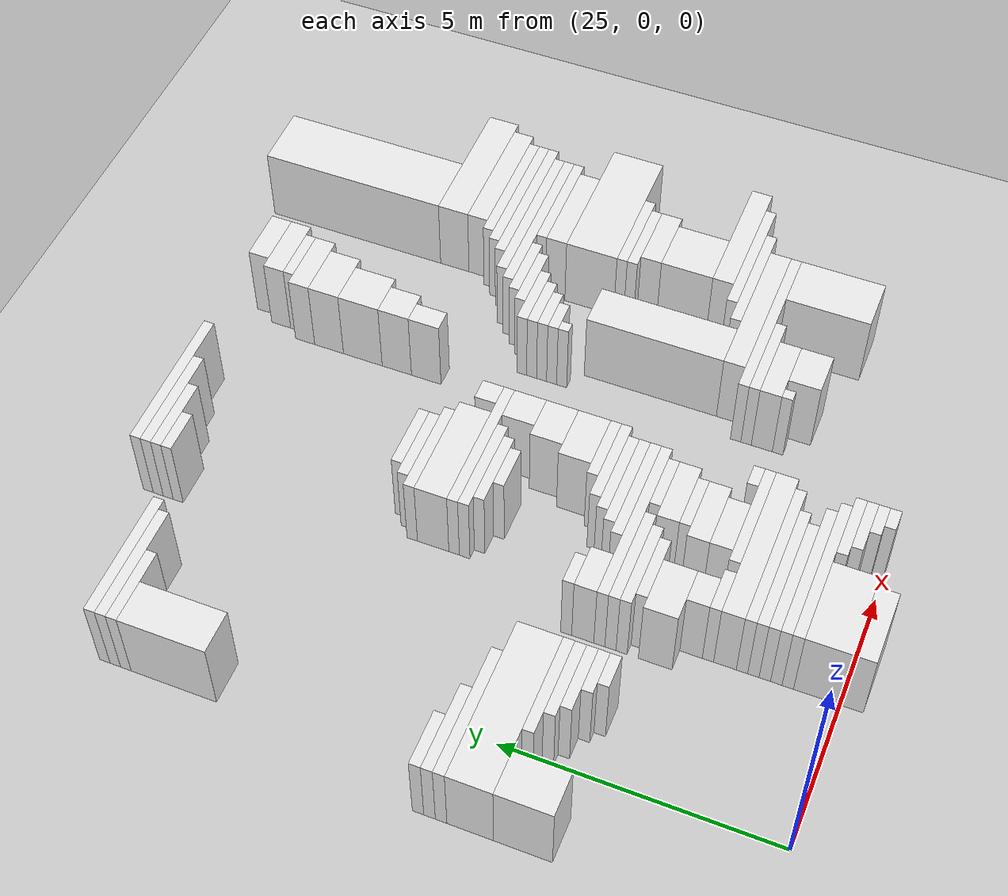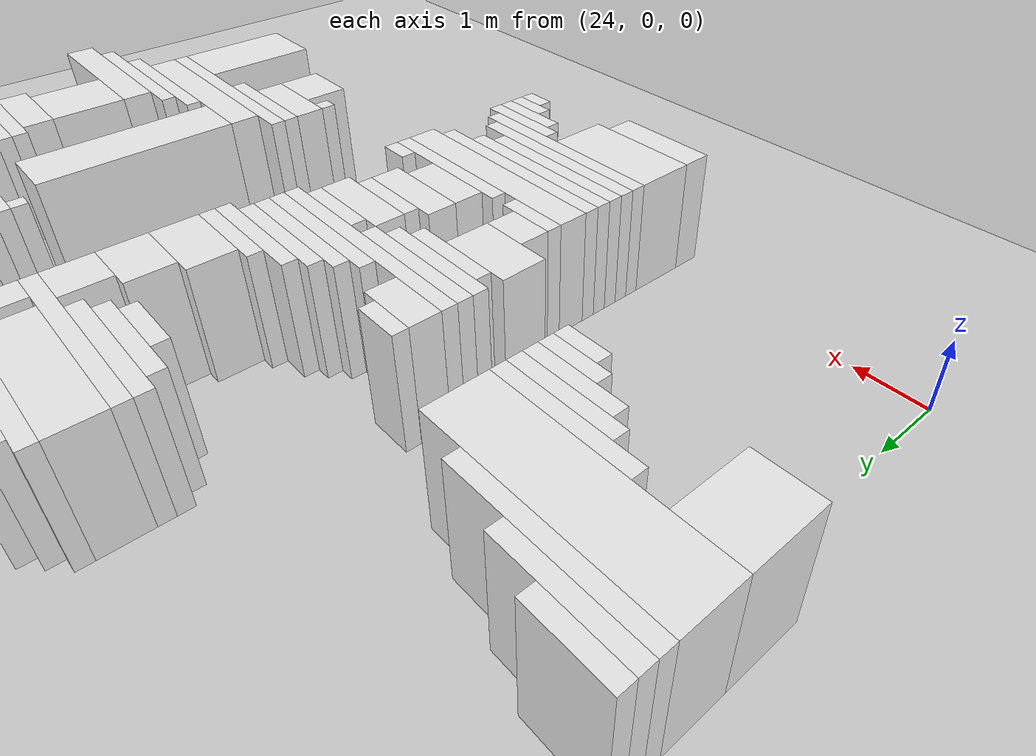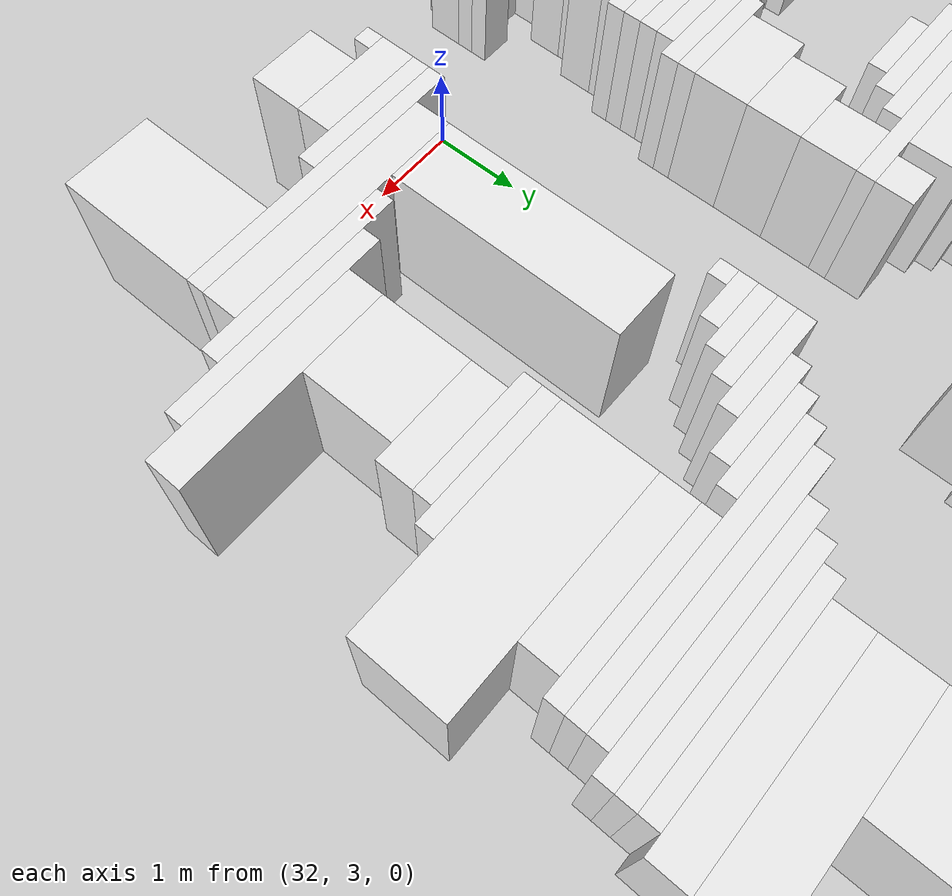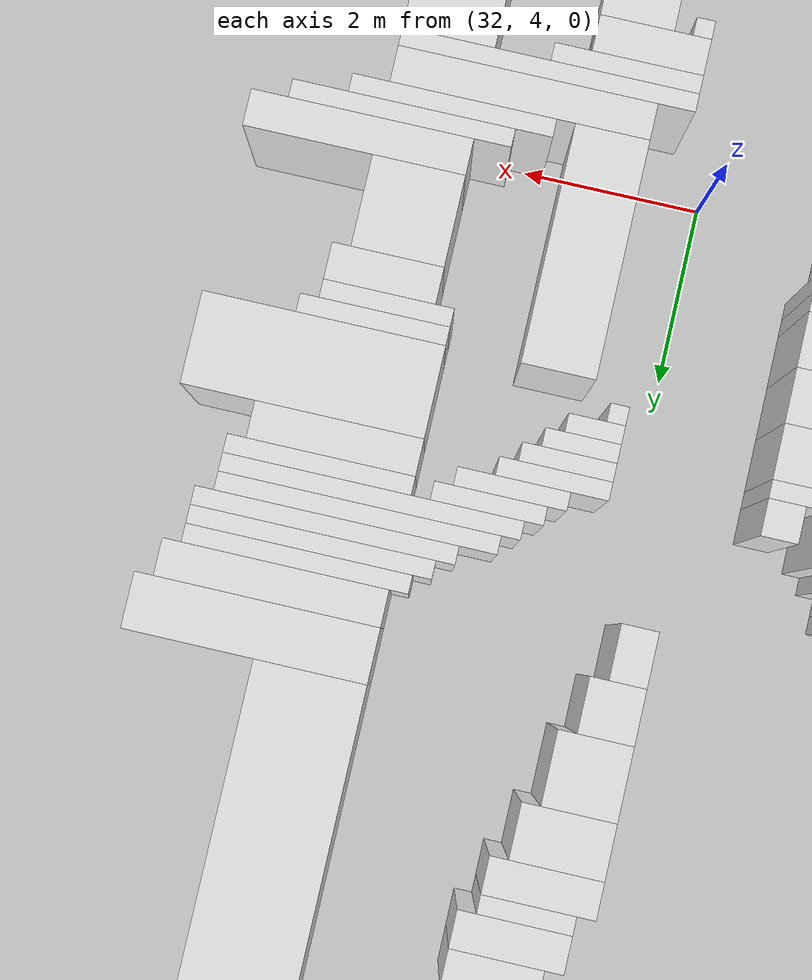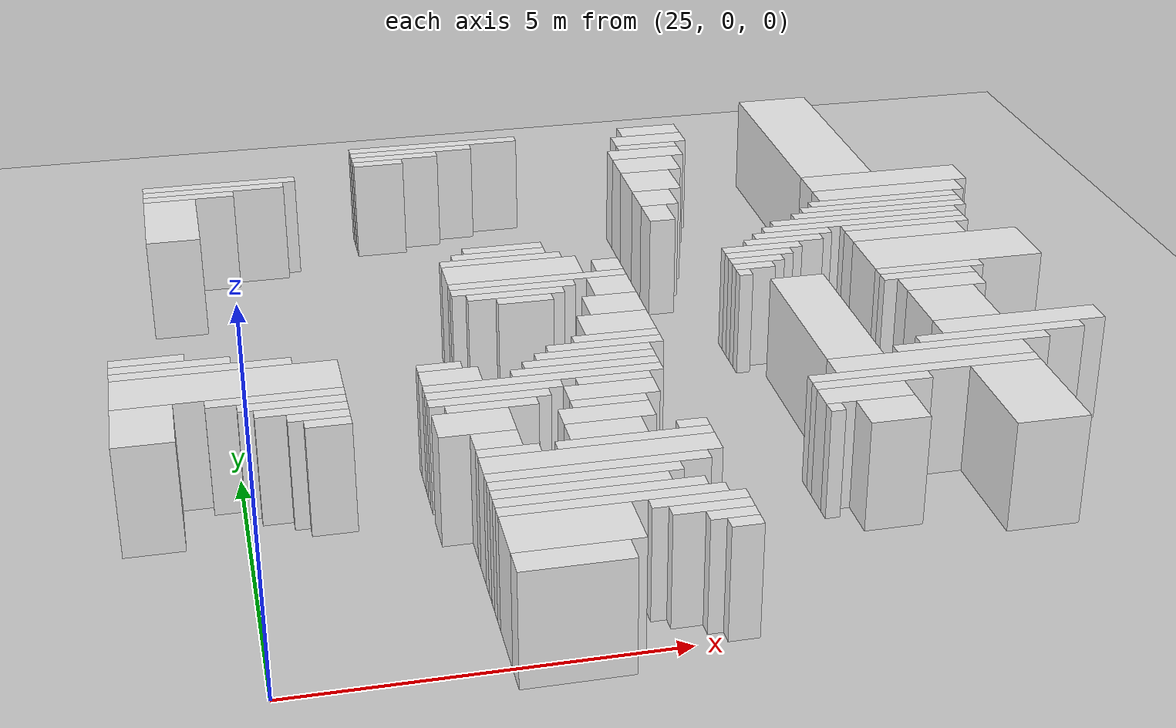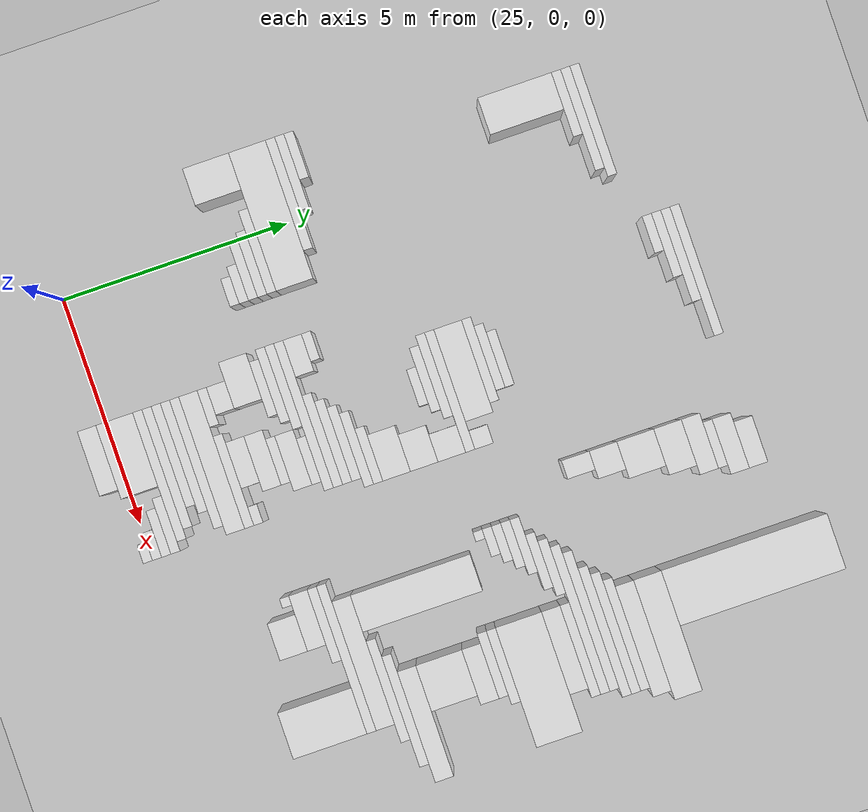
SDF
<sdf version="1.7">
 <world name="default">
  <model name="ground_plane">
   <static>1</static>
   <link name="link">
    <collision name="collision">
     <geometry><plane><normal>0 0 1</normal><size>120 120</size></plane></geometry>
    </collision>
    <visual name="visual">
     <geometry><plane><normal>0 0 1</normal><size>120 120</size></plane></geometry>
     <material>
      <script><uri>file://media/materials/scripts/gazebo.material</uri><name>Gazebo/Grey</name></script>
     </material>
    </visual>
   </link>
  </model>
  <model name="random_complex_01_model">
   <static>1</static>
   <link name="obs_1277">
    <pose>28.8000 12.7000 0.8000 0 0 0</pose>
    <collision name="obs_1277_col"><geometry><box><size>2.8000 0.2000 1.6000</size></box></geometry></collision>
    <visual name="obs_1277_vis">
     <geometry><box><size>2.8000 0.2000 1.6000</size></box></geometry>
     <material>
      <script><uri>file://media/materials/scripts/gazebo.material</uri><name>Gazebo/White</name></script>
     </material>
    </visual>
   </link>
   <link name="obs_1283">
    <pose>32.5000 12.6000 0.8000 0 0 0</pose>
    <collision name="obs_1283_col"><geometry><box><size>1.0000 0.4000 1.6000</size></box></geometry></collision>
    <visual name="obs_1283_vis">
     <geometry><box><size>1.0000 0.4000 1.6000</size></box></geometry>
     <material>
      <script><uri>file://media/materials/scripts/gazebo.material</uri><name>Gazebo/White</name></script>
     </material>
    </visual>
   </link>
   <link name="obs_1288">
    <pose>28.4000 12.5000 0.8000 0 0 0</pose>
    <collision name="obs_1288_col"><geometry><box><size>2.0000 0.2000 1.6000</size></box></geometry></collision>
    <visual name="obs_1288_vis">
     <geometry><box><size>2.0000 0.2000 1.6000</size></box></geometry>
     <material>
      <script><uri>file://media/materials/scripts/gazebo.material</uri><name>Gazebo/White</name></script>
     </material>
    </visual>
   </link>
   <link name="obs_1296">
    <pose>28.1000 12.3000 0.8000 0 0 0</pose>
    <collision name="obs_1296_col"><geometry><box><size>1.4000 0.2000 1.6000</size></box></geometry></collision>
    <visual name="obs_1296_vis">
     <geometry><box><size>1.4000 0.2000 1.6000</size></box></geometry>
     <material>
      <script><uri>file://media/materials/scripts/gazebo.material</uri><name>Gazebo/White</name></script>
     </material>
    </visual>
   </link>
   <link name="obs_1300">
    <pose>32.4000 12.2000 0.8000 0 0 0</pose>
    <collision name="obs_1300_col"><geometry><box><size>1.2000 0.4000 1.6000</size></box></geometry></collision>
    <visual name="obs_1300_vis">
     <geometry><box><size>1.2000 0.4000 1.6000</size></box></geometry>
     <material>
      <script><uri>file://media/materials/scripts/gazebo.material</uri><name>Gazebo/White</name></script>
     </material>
    </visual>
   </link>
   <link name="obs_1305">
    <pose>27.8000 12.1000 0.8000 0 0 0</pose>
    <collision name="obs_1305_col"><geometry><box><size>0.8000 0.2000 1.6000</size></box></geometry></collision>
    <visual name="obs_1305_vis">
     <geometry><box><size>0.8000 0.2000 1.6000</size></box></geometry>
     <material>
      <script><uri>file://media/materials/scripts/gazebo.material</uri><name>Gazebo/White</name></script>
     </material>
    </visual>
   </link>
   <link name="obs_1314">
    <pose>32.3000 11.9000 0.8000 0 0 0</pose>
    <collision name="obs_1314_col"><geometry><box><size>1.0000 0.2000 1.6000</size></box></geometry></collision>
    <visual name="obs_1314_vis">
     <geometry><box><size>1.0000 0.2000 1.6000</size></box></geometry>
     <material>
      <script><uri>file://media/materials/scripts/gazebo.material</uri><name>Gazebo/White</name></script>
     </material>
    </visual>
   </link>
   <link name="obs_1321">
    <pose>25.2000 11.7000 0.8000 0 0 0</pose>
    <collision name="obs_1321_col"><geometry><box><size>2.4000 0.2000 1.6000</size></box></geometry></collision>
    <visual name="obs_1321_vis">
     <geometry><box><size>2.4000 0.2000 1.6000</size></box></geometry>
     <material>
      <script><uri>file://media/materials/scripts/gazebo.material</uri><name>Gazebo/White</name></script>
     </material>
    </visual>
   </link>
   <link name="obs_1323">
    <pose>32.2000 11.6000 0.8000 0 0 0</pose>
    <collision name="obs_1323_col"><geometry><box><size>1.2000 0.4000 1.6000</size></box></geometry></collision>
    <visual name="obs_1323_vis">
     <geometry><box><size>1.2000 0.4000 1.6000</size></box></geometry>
     <material>
      <script><uri>file://media/materials/scripts/gazebo.material</uri><name>Gazebo/White</name></script>
     </material>
    </visual>
   </link>
   <link name="obs_1326">
    <pose>25.1000 11.5000 0.8000 0 0 0</pose>
    <collision name="obs_1326_col"><geometry><box><size>2.2000 0.2000 1.6000</size></box></geometry></collision>
    <visual name="obs_1326_vis">
     <geometry><box><size>2.2000 0.2000 1.6000</size></box></geometry>
     <material>
      <script><uri>file://media/materials/scripts/gazebo.material</uri><name>Gazebo/White</name></script>
     </material>
    </visual>
   </link>
   <link name="obs_1330">
    <pose>24.7000 11.3000 0.8000 0 0 0</pose>
    <collision name="obs_1330_col"><geometry><box><size>1.4000 0.2000 1.6000</size></box></geometry></collision>
    <visual name="obs_1330_vis">
     <geometry><box><size>1.4000 0.2000 1.6000</size></box></geometry>
     <material>
      <script><uri>file://media/materials/scripts/gazebo.material</uri><name>Gazebo/White</name></script>
     </material>
    </visual>
   </link>
   <link name="obs_1339">
    <pose>32.1000 11.1000 0.8000 0 0 0</pose>
    <collision name="obs_1339_col"><geometry><box><size>1.0000 0.6000 1.6000</size></box></geometry></collision>
    <visual name="obs_1339_vis">
     <geometry><box><size>1.0000 0.6000 1.6000</size></box></geometry>
     <material>
      <script><uri>file://media/materials/scripts/gazebo.material</uri><name>Gazebo/White</name></script>
     </material>
    </visual>
   </link>
   <link name="obs_1362">
    <pose>35.0000 11.8000 0.8000 0 0 0</pose>
    <collision name="obs_1362_col"><geometry><box><size>1.2000 3.6000 1.6000</size></box></geometry></collision>
    <visual name="obs_1362_vis">
     <geometry><box><size>1.2000 3.6000 1.6000</size></box></geometry>
     <material>
      <script><uri>file://media/materials/scripts/gazebo.material</uri><name>Gazebo/White</name></script>
     </material>
    </visual>
   </link>
   <link name="obs_1363">
    <pose>32.0000 10.4000 0.8000 0 0 0</pose>
    <collision name="obs_1363_col"><geometry><box><size>0.8000 0.8000 1.6000</size></box></geometry></collision>
    <visual name="obs_1363_vis">
     <geometry><box><size>0.8000 0.8000 1.6000</size></box></geometry>
     <material>
      <script><uri>file://media/materials/scripts/gazebo.material</uri><name>Gazebo/White</name></script>
     </material>
    </visual>
   </link>
   <link name="obs_1379">
    <pose>24.4000 10.4000 0.8000 0 0 0</pose>
    <collision name="obs_1379_col"><geometry><box><size>0.8000 1.6000 1.6000</size></box></geometry></collision>
    <visual name="obs_1379_vis">
     <geometry><box><size>0.8000 1.6000 1.6000</size></box></geometry>
     <material>
      <script><uri>file://media/materials/scripts/gazebo.material</uri><name>Gazebo/White</name></script>
     </material>
    </visual>
   </link>
   <link name="obs_1385">
    <pose>31.9000 9.7000 0.8000 0 0 0</pose>
    <collision name="obs_1385_col"><geometry><box><size>0.6000 0.6000 1.6000</size></box></geometry></collision>
    <visual name="obs_1385_vis">
     <geometry><box><size>0.6000 0.6000 1.6000</size></box></geometry>
     <material>
      <script><uri>file://media/materials/scripts/gazebo.material</uri><name>Gazebo/White</name></script>
     </material>
    </visual>
   </link>
   <link name="obs_1386">
    <pose>35.7000 9.7000 0.8000 0 0 0</pose>
    <collision name="obs_1386_col"><geometry><box><size>2.6000 0.6000 1.6000</size></box></geometry></collision>
    <visual name="obs_1386_vis">
     <geometry><box><size>2.6000 0.6000 1.6000</size></box></geometry>
     <material>
      <script><uri>file://media/materials/scripts/gazebo.material</uri><name>Gazebo/White</name></script>
     </material>
    </visual>
   </link>
   <link name="obs_1402">
    <pose>35.6000 9.2000 0.8000 0 0 0</pose>
    <collision name="obs_1402_col"><geometry><box><size>2.4000 0.4000 1.6000</size></box></geometry></collision>
    <visual name="obs_1402_vis">
     <geometry><box><size>2.4000 0.4000 1.6000</size></box></geometry>
     <material>
      <script><uri>file://media/materials/scripts/gazebo.material</uri><name>Gazebo/White</name></script>
     </material>
    </visual>
   </link>
   <link name="obs_1411">
    <pose>31.8000 9.1000 0.8000 0 0 0</pose>
    <collision name="obs_1411_col"><geometry><box><size>0.4000 0.6000 1.6000</size></box></geometry></collision>
    <visual name="obs_1411_vis">
     <geometry><box><size>0.4000 0.6000 1.6000</size></box></geometry>
     <material>
      <script><uri>file://media/materials/scripts/gazebo.material</uri><name>Gazebo/White</name></script>
     </material>
    </visual>
   </link>
   <link name="obs_1419">
    <pose>35.4000 8.9000 0.8000 0 0 0</pose>
    <collision name="obs_1419_col"><geometry><box><size>2.4000 0.2000 1.6000</size></box></geometry></collision>
    <visual name="obs_1419_vis">
     <geometry><box><size>2.4000 0.2000 1.6000</size></box></geometry>
     <material>
      <script><uri>file://media/materials/scripts/gazebo.material</uri><name>Gazebo/White</name></script>
     </material>
    </visual>
   </link>
   <link name="obs_1425">
    <pose>35.3000 8.7000 0.8000 0 0 0</pose>
    <collision name="obs_1425_col"><geometry><box><size>2.6000 0.2000 1.6000</size></box></geometry></collision>
    <visual name="obs_1425_vis">
     <geometry><box><size>2.6000 0.2000 1.6000</size></box></geometry>
     <material>
      <script><uri>file://media/materials/scripts/gazebo.material</uri><name>Gazebo/White</name></script>
     </material>
    </visual>
   </link>
   <link name="obs_1433">
    <pose>35.2000 8.5000 0.8000 0 0 0</pose>
    <collision name="obs_1433_col"><geometry><box><size>2.8000 0.2000 1.6000</size></box></geometry></collision>
    <visual name="obs_1433_vis">
     <geometry><box><size>2.8000 0.2000 1.6000</size></box></geometry>
     <material>
      <script><uri>file://media/materials/scripts/gazebo.material</uri><name>Gazebo/White</name></script>
     </material>
    </visual>
   </link>
   <link name="obs_1440">
    <pose>29.2000 8.3000 0.8000 0 0 0</pose>
    <collision name="obs_1440_col"><geometry><box><size>1.2000 0.2000 1.6000</size></box></geometry></collision>
    <visual name="obs_1440_vis">
     <geometry><box><size>1.2000 0.2000 1.6000</size></box></geometry>
     <material>
      <script><uri>file://media/materials/scripts/gazebo.material</uri><name>Gazebo/White</name></script>
     </material>
    </visual>
   </link>
   <link name="obs_1441">
    <pose>34.9000 8.3000 0.8000 0 0 0</pose>
    <collision name="obs_1441_col"><geometry><box><size>3.0000 0.2000 1.6000</size></box></geometry></collision>
    <visual name="obs_1441_vis">
     <geometry><box><size>3.0000 0.2000 1.6000</size></box></geometry>
     <material>
      <script><uri>file://media/materials/scripts/gazebo.material</uri><name>Gazebo/White</name></script>
     </material>
    </visual>
   </link>
   <link name="obs_1449">
    <pose>29.1000 8.1000 0.8000 0 0 0</pose>
    <collision name="obs_1449_col"><geometry><box><size>1.4000 0.2000 1.6000</size></box></geometry></collision>
    <visual name="obs_1449_vis">
     <geometry><box><size>1.4000 0.2000 1.6000</size></box></geometry>
     <material>
      <script><uri>file://media/materials/scripts/gazebo.material</uri><name>Gazebo/White</name></script>
     </material>
    </visual>
   </link>
   <link name="obs_1450">
    <pose>34.8000 8.1000 0.8000 0 0 0</pose>
    <collision name="obs_1450_col"><geometry><box><size>3.2000 0.2000 1.6000</size></box></geometry></collision>
    <visual name="obs_1450_vis">
     <geometry><box><size>3.2000 0.2000 1.6000</size></box></geometry>
     <material>
      <script><uri>file://media/materials/scripts/gazebo.material</uri><name>Gazebo/White</name></script>
     </material>
    </visual>
   </link>
   <link name="obs_1454">
    <pose>29.1000 7.9000 0.8000 0 0 0</pose>
    <collision name="obs_1454_col"><geometry><box><size>1.8000 0.2000 1.6000</size></box></geometry></collision>
    <visual name="obs_1454_vis">
     <geometry><box><size>1.8000 0.2000 1.6000</size></box></geometry>
     <material>
      <script><uri>file://media/materials/scripts/gazebo.material</uri><name>Gazebo/White</name></script>
     </material>
    </visual>
   </link>
   <link name="obs_1455">
    <pose>33.6000 7.9000 0.8000 0 0 0</pose>
    <collision name="obs_1455_col"><geometry><box><size>1.2000 0.2000 1.6000</size></box></geometry></collision>
    <visual name="obs_1455_vis">
     <geometry><box><size>1.2000 0.2000 1.6000</size></box></geometry>
     <material>
      <script><uri>file://media/materials/scripts/gazebo.material</uri><name>Gazebo/White</name></script>
     </material>
    </visual>
   </link>
   <link name="obs_1456">
    <pose>35.4000 7.9000 0.8000 0 0 0</pose>
    <collision name="obs_1456_col"><geometry><box><size>2.0000 0.2000 1.6000</size></box></geometry></collision>
    <visual name="obs_1456_vis">
     <geometry><box><size>2.0000 0.2000 1.6000</size></box></geometry>
     <material>
      <script><uri>file://media/materials/scripts/gazebo.material</uri><name>Gazebo/White</name></script>
     </material>
    </visual>
   </link>
   <link name="obs_1464">
    <pose>33.4000 7.7000 0.8000 0 0 0</pose>
    <collision name="obs_1464_col"><geometry><box><size>1.2000 0.2000 1.6000</size></box></geometry></collision>
    <visual name="obs_1464_vis">
     <geometry><box><size>1.2000 0.2000 1.6000</size></box></geometry>
     <material>
      <script><uri>file://media/materials/scripts/gazebo.material</uri><name>Gazebo/White</name></script>
     </material>
    </visual>
   </link>
   <link name="obs_1468">
    <pose>35.3000 7.6000 0.8000 0 0 0</pose>
    <collision name="obs_1468_col"><geometry><box><size>1.8000 0.4000 1.6000</size></box></geometry></collision>
    <visual name="obs_1468_vis">
     <geometry><box><size>1.8000 0.4000 1.6000</size></box></geometry>
     <material>
      <script><uri>file://media/materials/scripts/gazebo.material</uri><name>Gazebo/White</name></script>
     </material>
    </visual>
   </link>
   <link name="obs_1473">
    <pose>33.0000 7.5000 0.8000 0 0 0</pose>
    <collision name="obs_1473_col"><geometry><box><size>1.2000 0.2000 1.6000</size></box></geometry></collision>
    <visual name="obs_1473_vis">
     <geometry><box><size>1.2000 0.2000 1.6000</size></box></geometry>
     <material>
      <script><uri>file://media/materials/scripts/gazebo.material</uri><name>Gazebo/White</name></script>
     </material>
    </visual>
   </link>
   <link name="obs_1476">
    <pose>29.2000 7.5000 0.8000 0 0 0</pose>
    <collision name="obs_1476_col"><geometry><box><size>2.0000 0.6000 1.6000</size></box></geometry></collision>
    <visual name="obs_1476_vis">
     <geometry><box><size>2.0000 0.6000 1.6000</size></box></geometry>
     <material>
      <script><uri>file://media/materials/scripts/gazebo.material</uri><name>Gazebo/White</name></script>
     </material>
    </visual>
   </link>
   <link name="obs_1478">
    <pose>30.6000 7.4000 0.8000 0 0 0</pose>
    <collision name="obs_1478_col"><geometry><box><size>0.4000 0.4000 1.6000</size></box></geometry></collision>
    <visual name="obs_1478_vis">
     <geometry><box><size>0.4000 0.4000 1.6000</size></box></geometry>
     <material>
      <script><uri>file://media/materials/scripts/gazebo.material</uri><name>Gazebo/White</name></script>
     </material>
    </visual>
   </link>
   <link name="obs_1483">
    <pose>32.9000 7.3000 0.8000 0 0 0</pose>
    <collision name="obs_1483_col"><geometry><box><size>1.0000 0.2000 1.6000</size></box></geometry></collision>
    <visual name="obs_1483_vis">
     <geometry><box><size>1.0000 0.2000 1.6000</size></box></geometry>
     <material>
      <script><uri>file://media/materials/scripts/gazebo.material</uri><name>Gazebo/White</name></script>
     </material>
    </visual>
   </link>
   <link name="obs_1489">
    <pose>29.5000 7.1000 0.8000 0 0 0</pose>
    <collision name="obs_1489_col"><geometry><box><size>2.6000 0.2000 1.6000</size></box></geometry></collision>
    <visual name="obs_1489_vis">
     <geometry><box><size>2.6000 0.2000 1.6000</size></box></geometry>
     <material>
      <script><uri>file://media/materials/scripts/gazebo.material</uri><name>Gazebo/White</name></script>
     </material>
    </visual>
   </link>
   <link name="obs_1490">
    <pose>32.8000 7.1000 0.8000 0 0 0</pose>
    <collision name="obs_1490_col"><geometry><box><size>0.8000 0.2000 1.6000</size></box></geometry></collision>
    <visual name="obs_1490_vis">
     <geometry><box><size>0.8000 0.2000 1.6000</size></box></geometry>
     <material>
      <script><uri>file://media/materials/scripts/gazebo.material</uri><name>Gazebo/White</name></script>
     </material>
    </visual>
   </link>
   <link name="obs_1497">
    <pose>29.1000 6.9000 0.8000 0 0 0</pose>
    <collision name="obs_1497_col"><geometry><box><size>1.8000 0.2000 1.6000</size></box></geometry></collision>
    <visual name="obs_1497_vis">
     <geometry><box><size>1.8000 0.2000 1.6000</size></box></geometry>
     <material>
      <script><uri>file://media/materials/scripts/gazebo.material</uri><name>Gazebo/White</name></script>
     </material>
    </visual>
   </link>
   <link name="obs_1498">
    <pose>32.7000 6.9000 0.8000 0 0 0</pose>
    <collision name="obs_1498_col"><geometry><box><size>0.6000 0.2000 1.6000</size></box></geometry></collision>
    <visual name="obs_1498_vis">
     <geometry><box><size>0.6000 0.2000 1.6000</size></box></geometry>
     <material>
      <script><uri>file://media/materials/scripts/gazebo.material</uri><name>Gazebo/White</name></script>
     </material>
    </visual>
   </link>
   <link name="obs_1505">
    <pose>29.1000 6.7000 0.8000 0 0 0</pose>
    <collision name="obs_1505_col"><geometry><box><size>1.4000 0.2000 1.6000</size></box></geometry></collision>
    <visual name="obs_1505_vis">
     <geometry><box><size>1.4000 0.2000 1.6000</size></box></geometry>
     <material>
      <script><uri>file://media/materials/scripts/gazebo.material</uri><name>Gazebo/White</name></script>
     </material>
    </visual>
   </link>
   <link name="obs_1506">
    <pose>32.5000 6.7000 0.8000 0 0 0</pose>
    <collision name="obs_1506_col"><geometry><box><size>0.2000 0.2000 1.6000</size></box></geometry></collision>
    <visual name="obs_1506_vis">
     <geometry><box><size>0.2000 0.2000 1.6000</size></box></geometry>
     <material>
      <script><uri>file://media/materials/scripts/gazebo.material</uri><name>Gazebo/White</name></script>
     </material>
    </visual>
   </link>
   <link name="obs_1508">
    <pose>35.7000 6.9000 0.8000 0 0 0</pose>
    <collision name="obs_1508_col"><geometry><box><size>2.6000 1.0000 1.6000</size></box></geometry></collision>
    <visual name="obs_1508_vis">
     <geometry><box><size>2.6000 1.0000 1.6000</size></box></geometry>
     <material>
      <script><uri>file://media/materials/scripts/gazebo.material</uri><name>Gazebo/White</name></script>
     </material>
    </visual>
   </link>
   <link name="obs_1511">
    <pose>30.5000 6.7000 0.8000 0 0 0</pose>
    <collision name="obs_1511_col"><geometry><box><size>0.6000 0.6000 1.6000</size></box></geometry></collision>
    <visual name="obs_1511_vis">
     <geometry><box><size>0.6000 0.6000 1.6000</size></box></geometry>
     <material>
      <script><uri>file://media/materials/scripts/gazebo.material</uri><name>Gazebo/White</name></script>
     </material>
    </visual>
   </link>
   <link name="obs_1517">
    <pose>29.2000 6.5000 0.8000 0 0 0</pose>
    <collision name="obs_1517_col"><geometry><box><size>0.8000 0.2000 1.6000</size></box></geometry></collision>
    <visual name="obs_1517_vis">
     <geometry><box><size>0.8000 0.2000 1.6000</size></box></geometry>
     <material>
      <script><uri>file://media/materials/scripts/gazebo.material</uri><name>Gazebo/White</name></script>
     </material>
    </visual>
   </link>
   <link name="obs_1524">
    <pose>35.2000 6.3000 0.8000 0 0 0</pose>
    <collision name="obs_1524_col"><geometry><box><size>1.6000 0.2000 1.6000</size></box></geometry></collision>
    <visual name="obs_1524_vis">
     <geometry><box><size>1.6000 0.2000 1.6000</size></box></geometry>
     <material>
      <script><uri>file://media/materials/scripts/gazebo.material</uri><name>Gazebo/White</name></script>
     </material>
    </visual>
   </link>
   <link name="obs_1532">
    <pose>35.1000 6.1000 0.8000 0 0 0</pose>
    <collision name="obs_1532_col"><geometry><box><size>1.4000 0.2000 1.6000</size></box></geometry></collision>
    <visual name="obs_1532_vis">
     <geometry><box><size>1.4000 0.2000 1.6000</size></box></geometry>
     <material>
      <script><uri>file://media/materials/scripts/gazebo.material</uri><name>Gazebo/White</name></script>
     </material>
    </visual>
   </link>
   <link name="obs_1536">
    <pose>30.4000 6.1000 0.8000 0 0 0</pose>
    <collision name="obs_1536_col"><geometry><box><size>0.8000 0.6000 1.6000</size></box></geometry></collision>
    <visual name="obs_1536_vis">
     <geometry><box><size>0.8000 0.6000 1.6000</size></box></geometry>
     <material>
      <script><uri>file://media/materials/scripts/gazebo.material</uri><name>Gazebo/White</name></script>
     </material>
    </visual>
   </link>
   <link name="obs_1543">
    <pose>35.2000 5.8000 0.8000 0 0 0</pose>
    <collision name="obs_1543_col"><geometry><box><size>1.2000 0.4000 1.6000</size></box></geometry></collision>
    <visual name="obs_1543_vis">
     <geometry><box><size>1.2000 0.4000 1.6000</size></box></geometry>
     <material>
      <script><uri>file://media/materials/scripts/gazebo.material</uri><name>Gazebo/White</name></script>
     </material>
    </visual>
   </link>
   <link name="obs_1548">
    <pose>23.9000 5.7000 0.8000 0 0 0</pose>
    <collision name="obs_1548_col"><geometry><box><size>1.0000 0.2000 1.6000</size></box></geometry></collision>
    <visual name="obs_1548_vis">
     <geometry><box><size>1.0000 0.2000 1.6000</size></box></geometry>
     <material>
      <script><uri>file://media/materials/scripts/gazebo.material</uri><name>Gazebo/White</name></script>
     </material>
    </visual>
   </link>
   <link name="obs_1556">
    <pose>24.2000 5.5000 0.8000 0 0 0</pose>
    <collision name="obs_1556_col"><geometry><box><size>1.6000 0.2000 1.6000</size></box></geometry></collision>
    <visual name="obs_1556_vis">
     <geometry><box><size>1.6000 0.2000 1.6000</size></box></geometry>
     <material>
      <script><uri>file://media/materials/scripts/gazebo.material</uri><name>Gazebo/White</name></script>
     </material>
    </visual>
   </link>
   <link name="obs_1560">
    <pose>30.3000 5.5000 0.8000 0 0 0</pose>
    <collision name="obs_1560_col"><geometry><box><size>1.0000 0.6000 1.6000</size></box></geometry></collision>
    <visual name="obs_1560_vis">
     <geometry><box><size>1.0000 0.6000 1.6000</size></box></geometry>
     <material>
      <script><uri>file://media/materials/scripts/gazebo.material</uri><name>Gazebo/White</name></script>
     </material>
    </visual>
   </link>
   <link name="obs_1566">
    <pose>24.6000 5.3000 0.8000 0 0 0</pose>
    <collision name="obs_1566_col"><geometry><box><size>2.4000 0.2000 1.6000</size></box></geometry></collision>
    <visual name="obs_1566_vis">
     <geometry><box><size>2.4000 0.2000 1.6000</size></box></geometry>
     <material>
      <script><uri>file://media/materials/scripts/gazebo.material</uri><name>Gazebo/White</name></script>
     </material>
    </visual>
   </link>
   <link name="obs_1577">
    <pose>30.2000 5.1000 0.8000 0 0 0</pose>
    <collision name="obs_1577_col"><geometry><box><size>1.2000 0.2000 1.6000</size></box></geometry></collision>
    <visual name="obs_1577_vis">
     <geometry><box><size>1.2000 0.2000 1.6000</size></box></geometry>
     <material>
      <script><uri>file://media/materials/scripts/gazebo.material</uri><name>Gazebo/White</name></script>
     </material>
    </visual>
   </link>
   <link name="obs_1587">
    <pose>30.0000 4.9000 0.8000 0 0 0</pose>
    <collision name="obs_1587_col"><geometry><box><size>1.6000 0.2000 1.6000</size></box></geometry></collision>
    <visual name="obs_1587_vis">
     <geometry><box><size>1.6000 0.2000 1.6000</size></box></geometry>
     <material>
      <script><uri>file://media/materials/scripts/gazebo.material</uri><name>Gazebo/White</name></script>
     </material>
    </visual>
   </link>
   <link name="obs_1590">
    <pose>35.1000 5.1000 0.8000 0 0 0</pose>
    <collision name="obs_1590_col"><geometry><box><size>1.0000 1.0000 1.6000</size></box></geometry></collision>
    <visual name="obs_1590_vis">
     <geometry><box><size>1.0000 1.0000 1.6000</size></box></geometry>
     <material>
      <script><uri>file://media/materials/scripts/gazebo.material</uri><name>Gazebo/White</name></script>
     </material>
    </visual>
   </link>
   <link name="obs_1597">
    <pose>27.7000 4.7000 0.8000 0 0 0</pose>
    <collision name="obs_1597_col"><geometry><box><size>0.6000 0.2000 1.6000</size></box></geometry></collision>
    <visual name="obs_1597_vis">
     <geometry><box><size>0.6000 0.2000 1.6000</size></box></geometry>
     <material>
      <script><uri>file://media/materials/scripts/gazebo.material</uri><name>Gazebo/White</name></script>
     </material>
    </visual>
   </link>
   <link name="obs_1598">
    <pose>29.8000 4.7000 0.8000 0 0 0</pose>
    <collision name="obs_1598_col"><geometry><box><size>1.6000 0.2000 1.6000</size></box></geometry></collision>
    <visual name="obs_1598_vis">
     <geometry><box><size>1.6000 0.2000 1.6000</size></box></geometry>
     <material>
      <script><uri>file://media/materials/scripts/gazebo.material</uri><name>Gazebo/White</name></script>
     </material>
    </visual>
   </link>
   <link name="obs_1602">
    <pose>24.9000 4.8000 0.8000 0 0 0</pose>
    <collision name="obs_1602_col"><geometry><box><size>3.0000 0.8000 1.6000</size></box></geometry></collision>
    <visual name="obs_1602_vis">
     <geometry><box><size>3.0000 0.8000 1.6000</size></box></geometry>
     <material>
      <script><uri>file://media/materials/scripts/gazebo.material</uri><name>Gazebo/White</name></script>
     </material>
    </visual>
   </link>
   <link name="obs_1607">
    <pose>29.7000 4.5000 0.8000 0 0 0</pose>
    <collision name="obs_1607_col"><geometry><box><size>1.8000 0.2000 1.6000</size></box></geometry></collision>
    <visual name="obs_1607_vis">
     <geometry><box><size>1.8000 0.2000 1.6000</size></box></geometry>
     <material>
      <script><uri>file://media/materials/scripts/gazebo.material</uri><name>Gazebo/White</name></script>
     </material>
    </visual>
   </link>
   <link name="obs_1609">
    <pose>27.8000 4.4000 0.8000 0 0 0</pose>
    <collision name="obs_1609_col"><geometry><box><size>0.8000 0.4000 1.6000</size></box></geometry></collision>
    <visual name="obs_1609_vis">
     <geometry><box><size>0.8000 0.4000 1.6000</size></box></geometry>
     <material>
      <script><uri>file://media/materials/scripts/gazebo.material</uri><name>Gazebo/White</name></script>
     </material>
    </visual>
   </link>
   <link name="obs_1610">
    <pose>35.8000 4.4000 0.8000 0 0 0</pose>
    <collision name="obs_1610_col"><geometry><box><size>2.4000 0.4000 1.6000</size></box></geometry></collision>
    <visual name="obs_1610_vis">
     <geometry><box><size>2.4000 0.4000 1.6000</size></box></geometry>
     <material>
      <script><uri>file://media/materials/scripts/gazebo.material</uri><name>Gazebo/White</name></script>
     </material>
    </visual>
   </link>
   <link name="obs_1618">
    <pose>25.5000 4.3000 0.8000 0 0 0</pose>
    <collision name="obs_1618_col"><geometry><box><size>1.8000 0.2000 1.6000</size></box></geometry></collision>
    <visual name="obs_1618_vis">
     <geometry><box><size>1.8000 0.2000 1.6000</size></box></geometry>
     <material>
      <script><uri>file://media/materials/scripts/gazebo.material</uri><name>Gazebo/White</name></script>
     </material>
    </visual>
   </link>
   <link name="obs_1619">
    <pose>29.6000 4.3000 0.8000 0 0 0</pose>
    <collision name="obs_1619_col"><geometry><box><size>2.0000 0.2000 1.6000</size></box></geometry></collision>
    <visual name="obs_1619_vis">
     <geometry><box><size>2.0000 0.2000 1.6000</size></box></geometry>
     <material>
      <script><uri>file://media/materials/scripts/gazebo.material</uri><name>Gazebo/White</name></script>
     </material>
    </visual>
   </link>
   <link name="obs_1628">
    <pose>25.7000 4.1000 0.8000 0 0 0</pose>
    <collision name="obs_1628_col"><geometry><box><size>1.4000 0.2000 1.6000</size></box></geometry></collision>
    <visual name="obs_1628_vis">
     <geometry><box><size>1.4000 0.2000 1.6000</size></box></geometry>
     <material>
      <script><uri>file://media/materials/scripts/gazebo.material</uri><name>Gazebo/White</name></script>
     </material>
    </visual>
   </link>
   <link name="obs_1629">
    <pose>29.0000 4.1000 0.8000 0 0 0</pose>
    <collision name="obs_1629_col"><geometry><box><size>3.2000 0.2000 1.6000</size></box></geometry></collision>
    <visual name="obs_1629_vis">
     <geometry><box><size>3.2000 0.2000 1.6000</size></box></geometry>
     <material>
      <script><uri>file://media/materials/scripts/gazebo.material</uri><name>Gazebo/White</name></script>
     </material>
    </visual>
   </link>
   <link name="obs_1630">
    <pose>35.4000 4.1000 0.8000 0 0 0</pose>
    <collision name="obs_1630_col"><geometry><box><size>2.4000 0.2000 1.6000</size></box></geometry></collision>
    <visual name="obs_1630_vis">
     <geometry><box><size>2.4000 0.2000 1.6000</size></box></geometry>
     <material>
      <script><uri>file://media/materials/scripts/gazebo.material</uri><name>Gazebo/White</name></script>
     </material>
    </visual>
   </link>
   <link name="obs_1633">
    <pose>33.2000 5.1000 0.8000 0 0 0</pose>
    <collision name="obs_1633_col"><geometry><box><size>0.8000 2.6000 1.6000</size></box></geometry></collision>
    <visual name="obs_1633_vis">
     <geometry><box><size>0.8000 2.6000 1.6000</size></box></geometry>
     <material>
      <script><uri>file://media/materials/scripts/gazebo.material</uri><name>Gazebo/White</name></script>
     </material>
    </visual>
   </link>
   <link name="obs_1643">
    <pose>25.8000 3.9000 0.8000 0 0 0</pose>
    <collision name="obs_1643_col"><geometry><box><size>1.2000 0.2000 1.6000</size></box></geometry></collision>
    <visual name="obs_1643_vis">
     <geometry><box><size>1.2000 0.2000 1.6000</size></box></geometry>
     <material>
      <script><uri>file://media/materials/scripts/gazebo.material</uri><name>Gazebo/White</name></script>
     </material>
    </visual>
   </link>
   <link name="obs_1644">
    <pose>28.3000 3.9000 0.8000 0 0 0</pose>
    <collision name="obs_1644_col"><geometry><box><size>1.8000 0.2000 1.6000</size></box></geometry></collision>
    <visual name="obs_1644_vis">
     <geometry><box><size>1.8000 0.2000 1.6000</size></box></geometry>
     <material>
      <script><uri>file://media/materials/scripts/gazebo.material</uri><name>Gazebo/White</name></script>
     </material>
    </visual>
   </link>
   <link name="obs_1645">
    <pose>29.9000 3.9000 0.8000 0 0 0</pose>
    <collision name="obs_1645_col"><geometry><box><size>1.0000 0.2000 1.6000</size></box></geometry></collision>
    <visual name="obs_1645_vis">
     <geometry><box><size>1.0000 0.2000 1.6000</size></box></geometry>
     <material>
      <script><uri>file://media/materials/scripts/gazebo.material</uri><name>Gazebo/White</name></script>
     </material>
    </visual>
   </link>
   <link name="obs_1646">
    <pose>34.9000 3.9000 0.8000 0 0 0</pose>
    <collision name="obs_1646_col"><geometry><box><size>2.2000 0.2000 1.6000</size></box></geometry></collision>
    <visual name="obs_1646_vis">
     <geometry><box><size>2.2000 0.2000 1.6000</size></box></geometry>
     <material>
      <script><uri>file://media/materials/scripts/gazebo.material</uri><name>Gazebo/White</name></script>
     </material>
    </visual>
   </link>
   <link name="obs_1657">
    <pose>26.0000 3.7000 0.8000 0 0 0</pose>
    <collision name="obs_1657_col"><geometry><box><size>0.8000 0.2000 1.6000</size></box></geometry></collision>
    <visual name="obs_1657_vis">
     <geometry><box><size>0.8000 0.2000 1.6000</size></box></geometry>
     <material>
      <script><uri>file://media/materials/scripts/gazebo.material</uri><name>Gazebo/White</name></script>
     </material>
    </visual>
   </link>
   <link name="obs_1658">
    <pose>28.2000 3.7000 0.8000 0 0 0</pose>
    <collision name="obs_1658_col"><geometry><box><size>1.6000 0.2000 1.6000</size></box></geometry></collision>
    <visual name="obs_1658_vis">
     <geometry><box><size>1.6000 0.2000 1.6000</size></box></geometry>
     <material>
      <script><uri>file://media/materials/scripts/gazebo.material</uri><name>Gazebo/White</name></script>
     </material>
    </visual>
   </link>
   <link name="obs_1662">
    <pose>23.8000 3.9000 0.8000 0 0 0</pose>
    <collision name="obs_1662_col"><geometry><box><size>0.8000 1.0000 1.6000</size></box></geometry></collision>
    <visual name="obs_1662_vis">
     <geometry><box><size>0.8000 1.0000 1.6000</size></box></geometry>
     <material>
      <script><uri>file://media/materials/scripts/gazebo.material</uri><name>Gazebo/White</name></script>
     </material>
    </visual>
   </link>
   <link name="obs_1664">
    <pose>29.8000 3.6000 0.8000 0 0 0</pose>
    <collision name="obs_1664_col"><geometry><box><size>1.2000 0.4000 1.6000</size></box></geometry></collision>
    <visual name="obs_1664_vis">
     <geometry><box><size>1.2000 0.4000 1.6000</size></box></geometry>
     <material>
      <script><uri>file://media/materials/scripts/gazebo.material</uri><name>Gazebo/White</name></script>
     </material>
    </visual>
   </link>
   <link name="obs_1665">
    <pose>34.2000 3.6000 0.8000 0 0 0</pose>
    <collision name="obs_1665_col"><geometry><box><size>2.8000 0.4000 1.6000</size></box></geometry></collision>
    <visual name="obs_1665_vis">
     <geometry><box><size>2.8000 0.4000 1.6000</size></box></geometry>
     <material>
      <script><uri>file://media/materials/scripts/gazebo.material</uri><name>Gazebo/White</name></script>
     </material>
    </visual>
   </link>
   <link name="obs_1673">
    <pose>26.1000 3.5000 0.8000 0 0 0</pose>
    <collision name="obs_1673_col"><geometry><box><size>0.6000 0.2000 1.6000</size></box></geometry></collision>
    <visual name="obs_1673_vis">
     <geometry><box><size>0.6000 0.2000 1.6000</size></box></geometry>
     <material>
      <script><uri>file://media/materials/scripts/gazebo.material</uri><name>Gazebo/White</name></script>
     </material>
    </visual>
   </link>
   <link name="obs_1674">
    <pose>28.2000 3.5000 0.8000 0 0 0</pose>
    <collision name="obs_1674_col"><geometry><box><size>1.2000 0.2000 1.6000</size></box></geometry></collision>
    <visual name="obs_1674_vis">
     <geometry><box><size>1.2000 0.2000 1.6000</size></box></geometry>
     <material>
      <script><uri>file://media/materials/scripts/gazebo.material</uri><name>Gazebo/White</name></script>
     </material>
    </visual>
   </link>
   <link name="obs_1684">
    <pose>29.7000 3.3000 0.8000 0 0 0</pose>
    <collision name="obs_1684_col"><geometry><box><size>1.0000 0.2000 1.6000</size></box></geometry></collision>
    <visual name="obs_1684_vis">
     <geometry><box><size>1.0000 0.2000 1.6000</size></box></geometry>
     <material>
      <script><uri>file://media/materials/scripts/gazebo.material</uri><name>Gazebo/White</name></script>
     </material>
    </visual>
   </link>
   <link name="obs_1685">
    <pose>34.0000 3.3000 0.8000 0 0 0</pose>
    <collision name="obs_1685_col"><geometry><box><size>3.2000 0.2000 1.6000</size></box></geometry></collision>
    <visual name="obs_1685_vis">
     <geometry><box><size>3.2000 0.2000 1.6000</size></box></geometry>
     <material>
      <script><uri>file://media/materials/scripts/gazebo.material</uri><name>Gazebo/White</name></script>
     </material>
    </visual>
   </link>
   <link name="obs_1695">
    <pose>33.2000 3.1000 0.8000 0 0 0</pose>
    <collision name="obs_1695_col"><geometry><box><size>1.6000 0.2000 1.6000</size></box></geometry></collision>
    <visual name="obs_1695_vis">
     <geometry><box><size>1.6000 0.2000 1.6000</size></box></geometry>
     <material>
      <script><uri>file://media/materials/scripts/gazebo.material</uri><name>Gazebo/White</name></script>
     </material>
    </visual>
   </link>
   <link name="obs_1701">
    <pose>27.9000 3.1000 0.8000 0 0 0</pose>
    <collision name="obs_1701_col"><geometry><box><size>1.0000 0.6000 1.6000</size></box></geometry></collision>
    <visual name="obs_1701_vis">
     <geometry><box><size>1.0000 0.6000 1.6000</size></box></geometry>
     <material>
      <script><uri>file://media/materials/scripts/gazebo.material</uri><name>Gazebo/White</name></script>
     </material>
    </visual>
   </link>
   <link name="obs_1702">
    <pose>29.6000 3.0000 0.8000 0 0 0</pose>
    <collision name="obs_1702_col"><geometry><box><size>1.2000 0.4000 1.6000</size></box></geometry></collision>
    <visual name="obs_1702_vis">
     <geometry><box><size>1.2000 0.4000 1.6000</size></box></geometry>
     <material>
      <script><uri>file://media/materials/scripts/gazebo.material</uri><name>Gazebo/White</name></script>
     </material>
    </visual>
   </link>
   <link name="obs_1714">
    <pose>33.0000 2.8000 0.8000 0 0 0</pose>
    <collision name="obs_1714_col"><geometry><box><size>1.2000 0.4000 1.6000</size></box></geometry></collision>
    <visual name="obs_1714_vis">
     <geometry><box><size>1.2000 0.4000 1.6000</size></box></geometry>
     <material>
      <script><uri>file://media/materials/scripts/gazebo.material</uri><name>Gazebo/White</name></script>
     </material>
    </visual>
   </link>
   <link name="obs_1722">
    <pose>28.1000 2.6000 0.8000 0 0 0</pose>
    <collision name="obs_1722_col"><geometry><box><size>0.6000 0.4000 1.6000</size></box></geometry></collision>
    <visual name="obs_1722_vis">
     <geometry><box><size>0.6000 0.4000 1.6000</size></box></geometry>
     <material>
      <script><uri>file://media/materials/scripts/gazebo.material</uri><name>Gazebo/White</name></script>
     </material>
    </visual>
   </link>
   <link name="obs_1723">
    <pose>29.5000 2.6000 0.8000 0 0 0</pose>
    <collision name="obs_1723_col"><geometry><box><size>1.0000 0.4000 1.6000</size></box></geometry></collision>
    <visual name="obs_1723_vis">
     <geometry><box><size>1.0000 0.4000 1.6000</size></box></geometry>
     <material>
      <script><uri>file://media/materials/scripts/gazebo.material</uri><name>Gazebo/White</name></script>
     </material>
    </visual>
   </link>
   <link name="obs_1728">
    <pose>30.6000 2.5000 0.8000 0 0 0</pose>
    <collision name="obs_1728_col"><geometry><box><size>0.4000 0.2000 1.6000</size></box></geometry></collision>
    <visual name="obs_1728_vis">
     <geometry><box><size>0.4000 0.2000 1.6000</size></box></geometry>
     <material>
      <script><uri>file://media/materials/scripts/gazebo.material</uri><name>Gazebo/White</name></script>
     </material>
    </visual>
   </link>
   <link name="obs_1729">
    <pose>32.5000 2.5000 0.8000 0 0 0</pose>
    <collision name="obs_1729_col"><geometry><box><size>0.2000 0.2000 1.6000</size></box></geometry></collision>
    <visual name="obs_1729_vis">
     <geometry><box><size>0.2000 0.2000 1.6000</size></box></geometry>
     <material>
      <script><uri>file://media/materials/scripts/gazebo.material</uri><name>Gazebo/White</name></script>
     </material>
    </visual>
   </link>
   <link name="obs_1736">
    <pose>28.2000 2.3000 0.8000 0 0 0</pose>
    <collision name="obs_1736_col"><geometry><box><size>0.8000 0.2000 1.6000</size></box></geometry></collision>
    <visual name="obs_1736_vis">
     <geometry><box><size>0.8000 0.2000 1.6000</size></box></geometry>
     <material>
      <script><uri>file://media/materials/scripts/gazebo.material</uri><name>Gazebo/White</name></script>
     </material>
    </visual>
   </link>
   <link name="obs_1737">
    <pose>29.8000 2.3000 0.8000 0 0 0</pose>
    <collision name="obs_1737_col"><geometry><box><size>2.0000 0.2000 1.6000</size></box></geometry></collision>
    <visual name="obs_1737_vis">
     <geometry><box><size>2.0000 0.2000 1.6000</size></box></geometry>
     <material>
      <script><uri>file://media/materials/scripts/gazebo.material</uri><name>Gazebo/White</name></script>
     </material>
    </visual>
   </link>
   <link name="obs_1744">
    <pose>33.2000 2.3000 0.8000 0 0 0</pose>
    <collision name="obs_1744_col"><geometry><box><size>0.8000 0.6000 1.6000</size></box></geometry></collision>
    <visual name="obs_1744_vis">
     <geometry><box><size>0.8000 0.6000 1.6000</size></box></geometry>
     <material>
      <script><uri>file://media/materials/scripts/gazebo.material</uri><name>Gazebo/White</name></script>
     </material>
    </visual>
   </link>
   <link name="obs_1753">
    <pose>29.3000 2.0000 0.8000 0 0 0</pose>
    <collision name="obs_1753_col"><geometry><box><size>3.0000 0.4000 1.6000</size></box></geometry></collision>
    <visual name="obs_1753_vis">
     <geometry><box><size>3.0000 0.4000 1.6000</size></box></geometry>
     <material>
      <script><uri>file://media/materials/scripts/gazebo.material</uri><name>Gazebo/White</name></script>
     </material>
    </visual>
   </link>
   <link name="obs_1761">
    <pose>35.1000 2.4000 0.8000 0 0 0</pose>
    <collision name="obs_1761_col"><geometry><box><size>1.0000 1.6000 1.6000</size></box></geometry></collision>
    <visual name="obs_1761_vis">
     <geometry><box><size>1.0000 1.6000 1.6000</size></box></geometry>
     <material>
      <script><uri>file://media/materials/scripts/gazebo.material</uri><name>Gazebo/White</name></script>
     </material>
    </visual>
   </link>
   <link name="obs_1770">
    <pose>29.2000 1.7000 0.8000 0 0 0</pose>
    <collision name="obs_1770_col"><geometry><box><size>2.8000 0.2000 1.6000</size></box></geometry></collision>
    <visual name="obs_1770_vis">
     <geometry><box><size>2.8000 0.2000 1.6000</size></box></geometry>
     <material>
      <script><uri>file://media/materials/scripts/gazebo.material</uri><name>Gazebo/White</name></script>
     </material>
    </visual>
   </link>
   <link name="obs_1781">
    <pose>29.0000 1.5000 0.8000 0 0 0</pose>
    <collision name="obs_1781_col"><geometry><box><size>2.4000 0.2000 1.6000</size></box></geometry></collision>
    <visual name="obs_1781_vis">
     <geometry><box><size>2.4000 0.2000 1.6000</size></box></geometry>
     <material>
      <script><uri>file://media/materials/scripts/gazebo.material</uri><name>Gazebo/White</name></script>
     </material>
    </visual>
   </link>
   <link name="obs_1790">
    <pose>28.9000 1.3000 0.8000 0 0 0</pose>
    <collision name="obs_1790_col"><geometry><box><size>2.2000 0.2000 1.6000</size></box></geometry></collision>
    <visual name="obs_1790_vis">
     <geometry><box><size>2.2000 0.2000 1.6000</size></box></geometry>
     <material>
      <script><uri>file://media/materials/scripts/gazebo.material</uri><name>Gazebo/White</name></script>
     </material>
    </visual>
   </link>
   <link name="obs_1799">
    <pose>29.1000 1.1000 0.8000 0 0 0</pose>
    <collision name="obs_1799_col"><geometry><box><size>2.6000 0.2000 1.6000</size></box></geometry></collision>
    <visual name="obs_1799_vis">
     <geometry><box><size>2.6000 0.2000 1.6000</size></box></geometry>
     <material>
      <script><uri>file://media/materials/scripts/gazebo.material</uri><name>Gazebo/White</name></script>
     </material>
    </visual>
   </link>
   <link name="obs_1809">
    <pose>29.2000 0.9000 0.8000 0 0 0</pose>
    <collision name="obs_1809_col"><geometry><box><size>2.8000 0.2000 1.6000</size></box></geometry></collision>
    <visual name="obs_1809_vis">
     <geometry><box><size>2.8000 0.2000 1.6000</size></box></geometry>
     <material>
      <script><uri>file://media/materials/scripts/gazebo.material</uri><name>Gazebo/White</name></script>
     </material>
    </visual>
   </link>
   <link name="obs_1818">
    <pose>30.2000 0.7000 0.8000 0 0 0</pose>
    <collision name="obs_1818_col"><geometry><box><size>1.2000 0.2000 1.6000</size></box></geometry></collision>
    <visual name="obs_1818_vis">
     <geometry><box><size>1.2000 0.2000 1.6000</size></box></geometry>
     <material>
      <script><uri>file://media/materials/scripts/gazebo.material</uri><name>Gazebo/White</name></script>
     </material>
    </visual>
   </link>
   <link name="obs_1825">
    <pose>30.3000 0.5000 0.8000 0 0 0</pose>
    <collision name="obs_1825_col"><geometry><box><size>1.0000 0.2000 1.6000</size></box></geometry></collision>
    <visual name="obs_1825_vis">
     <geometry><box><size>1.0000 0.2000 1.6000</size></box></geometry>
     <material>
      <script><uri>file://media/materials/scripts/gazebo.material</uri><name>Gazebo/White</name></script>
     </material>
    </visual>
   </link>
   <link name="obs_1834">
    <pose>30.5000 0.3000 0.8000 0 0 0</pose>
    <collision name="obs_1834_col"><geometry><box><size>0.6000 0.2000 1.6000</size></box></geometry></collision>
    <visual name="obs_1834_vis">
     <geometry><box><size>0.6000 0.2000 1.6000</size></box></geometry>
     <material>
      <script><uri>file://media/materials/scripts/gazebo.material</uri><name>Gazebo/White</name></script>
     </material>
    </visual>
   </link>
   <link name="obs_1837">
    <pose>28.6000 0.4000 0.8000 0 0 0</pose>
    <collision name="obs_1837_col"><geometry><box><size>1.6000 0.8000 1.6000</size></box></geometry></collision>
    <visual name="obs_1837_vis">
     <geometry><box><size>1.6000 0.8000 1.6000</size></box></geometry>
     <material>
      <script><uri>file://media/materials/scripts/gazebo.material</uri><name>Gazebo/White</name></script>
     </material>
    </visual>
   </link>
   <link name="obs_1843">
    <pose>30.6000 0.1000 0.8000 0 0 0</pose>
    <collision name="obs_1843_col"><geometry><box><size>0.4000 0.2000 1.6000</size></box></geometry></collision>
    <visual name="obs_1843_vis">
     <geometry><box><size>0.4000 0.2000 1.6000</size></box></geometry>
     <material>
      <script><uri>file://media/materials/scripts/gazebo.material</uri><name>Gazebo/White</name></script>
     </material>
    </visual>
   </link>
   <link name="obs_1854">
    <pose>28.5000 -0.2000 0.8000 0 0 0</pose>
    <collision name="obs_1854_col"><geometry><box><size>1.4000 0.4000 1.6000</size></box></geometry></collision>
    <visual name="obs_1854_vis">
     <geometry><box><size>1.4000 0.4000 1.6000</size></box></geometry>
     <material>
      <script><uri>file://media/materials/scripts/gazebo.material</uri><name>Gazebo/White</name></script>
     </material>
    </visual>
   </link>
  </model>
 </world>
</sdf>
